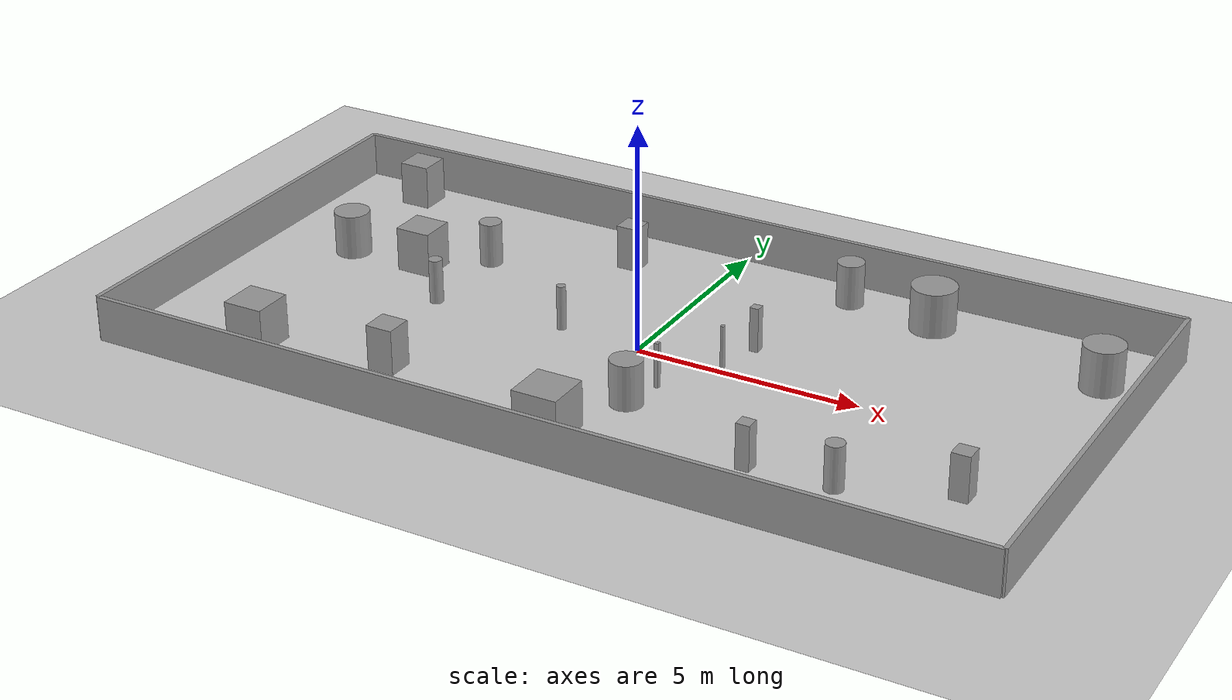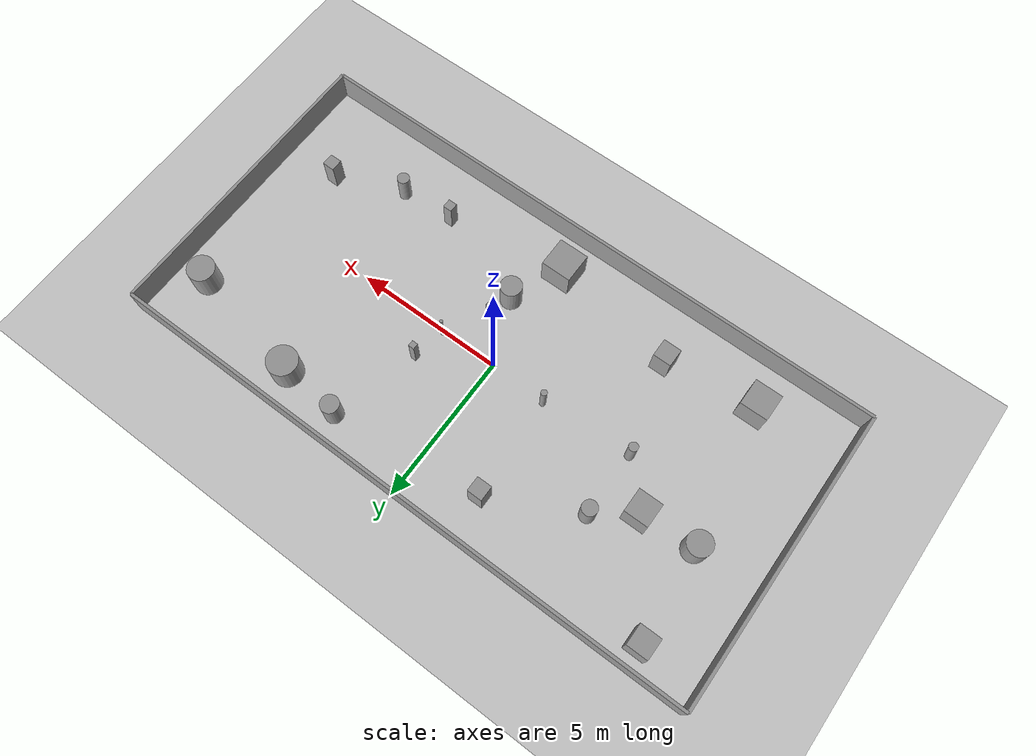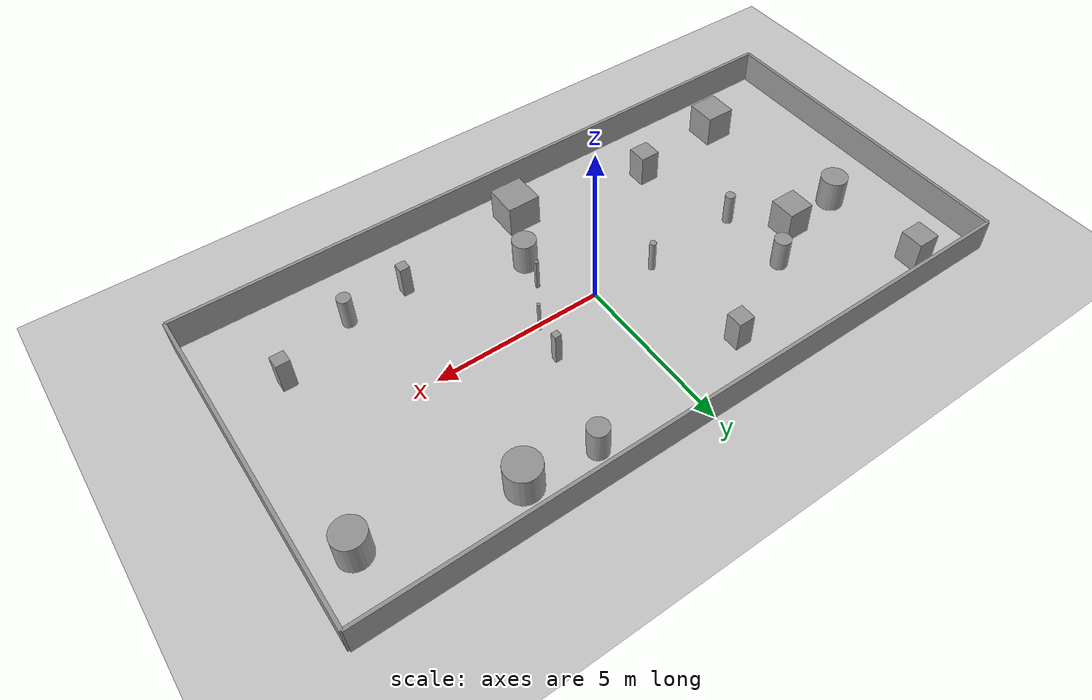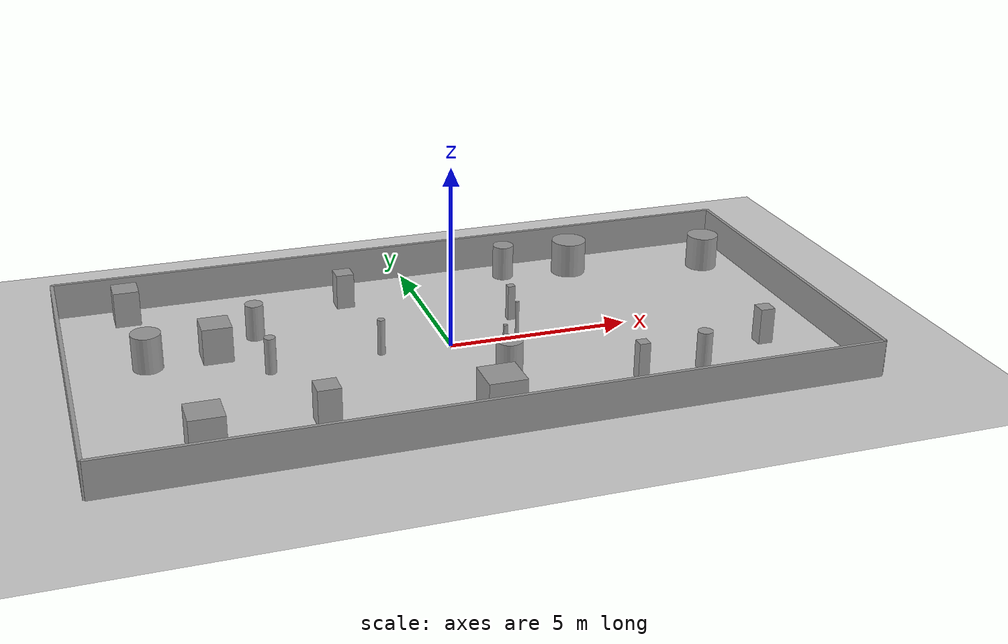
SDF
<sdf version="1.6">
 <world name="default">
  <light name="sun" type="directional">
   <pose>0 0 10 0 -0 0</pose>
   <diffuse>0.8 0.8 0.8 1</diffuse>
   <specular>0.2 0.2 0.2 1</specular>
   <attenuation>
    <range>1000</range>
    <constant>0.9</constant>
    <linear>0.01</linear>
    <quadratic>0.001</quadratic>
   </attenuation>
   <direction>-0.5 0.1 -0.9</direction>
  </light>
  <model name="ground_plane">
   <static>1</static>
   <link name="link">
    <collision name="collision">
     <laser_retro>100.5</laser_retro>
     <geometry><plane><normal>0 0 1</normal><size>100 100</size></plane></geometry>
     <surface><friction><ode><mu>100</mu><mu2>50</mu2></ode></friction></surface>
    </collision>
    <visual name="visual">
     <cast_shadows>0</cast_shadows>
     <geometry><plane><normal>0 0 1</normal><size>100 100</size></plane></geometry>
     <material>
      <script><uri>file://media/materials/scripts/gazebo.material</uri><name>Gazebo/Grey</name></script>
     </material>
    </visual>
   </link>
  </model>
  <gravity>0 0 -9.8</gravity>
  <magnetic_field>6e-06 2.3e-05 -4.2e-05</magnetic_field>
  <atmosphere type="adiabatic"/>
  <physics name="default_physics" default="0" type="ode">
   <max_step_size>0.001</max_step_size>
   <real_time_factor>1</real_time_factor>
   <real_time_update_rate>1000</real_time_update_rate>
  </physics>
  <scene><ambient>0.4 0.4 0.4 1</ambient><background>0.7 0.7 0.7 1</background><shadows>1</shadows></scene>
  <spherical_coordinates>
   <surface_model>EARTH_WGS84</surface_model>
   <latitude_deg>0</latitude_deg>
   <longitude_deg>0</longitude_deg>
   <elevation>0</elevation>
   <heading_deg>0</heading_deg>
  </spherical_coordinates>
  <model name="wall_box_0">
   <pose>-10 0 0.5 0 0 0</pose>
   <static>1</static>
   <link name="link">
    <collision name="collision">
     <laser_retro>1.5</laser_retro>
     <geometry><box><size>0.1 10 1</size></box></geometry>
    </collision>
    <visual name="visual">
     <geometry><box><size>0.1 10 1</size></box></geometry>
     <material>
      <script><name>Gazebo/Grey</name><uri>file://media/materials/scripts/gazebo.material</uri></script>
     </material>
    </visual>
   </link>
  </model>
  <model name="wall_box_1">
   <pose>10 0 0.5 0 0 0</pose>
   <static>1</static>
   <link name="link">
    <collision name="collision">
     <laser_retro>1.5</laser_retro>
     <geometry><box><size>0.1 10 1</size></box></geometry>
    </collision>
    <visual name="visual">
     <geometry><box><size>0.1 10 1</size></box></geometry>
     <material>
      <script><name>Gazebo/Grey</name><uri>file://media/materials/scripts/gazebo.material</uri></script>
     </material>
    </visual>
   </link>
  </model>
  <model name="wall_box_2">
   <pose>0 5 0.5 0 0 0</pose>
   <static>1</static>
   <link name="link">
    <collision name="collision">
     <laser_retro>1.5</laser_retro>
     <geometry><box><size>20 0.1 1</size></box></geometry>
    </collision>
    <visual name="visual">
     <geometry><box><size>20 0.1 1</size></box></geometry>
     <material>
      <script><name>Gazebo/Grey</name><uri>file://media/materials/scripts/gazebo.material</uri></script>
     </material>
    </visual>
   </link>
  </model>
  <model name="wall_box_3">
   <pose>0 -5 0.5 0 0 0</pose>
   <static>1</static>
   <link name="link">
    <collision name="collision">
     <laser_retro>1.5</laser_retro>
     <geometry><box><size>20 0.1 1</size></box></geometry>
    </collision>
    <visual name="visual">
     <geometry><box><size>20 0.1 1</size></box></geometry>
     <material>
      <script><name>Gazebo/Grey</name><uri>file://media/materials/scripts/gazebo.material</uri></script>
     </material>
    </visual>
   </link>
  </model>
  <model name="cyl_0">
   <pose>1.9 0.1 0.499998 0 0 0</pose>
   <static>1</static>
   <link name="link">
    <collision name="collision">
     <laser_retro>2.5</laser_retro>
     <geometry><cylinder><radius>0.05</radius><length>1</length></cylinder></geometry>
    </collision>
    <visual name="visual">
     <geometry><cylinder><radius>0.05</radius><length>1</length></cylinder></geometry>
     <material>
      <script><name>Gazebo/Grey</name><uri>file://media/materials/scripts/gazebo.material</uri></script>
     </material>
    </visual>
   </link>
  </model>
  <model name="cyl_1">
   <pose>-1.9 0.1 0.499998 0 0 0</pose>
   <static>1</static>
   <link name="link">
    <collision name="collision">
     <laser_retro>2.5</laser_retro>
     <geometry><cylinder><radius>0.1</radius><length>1</length></cylinder></geometry>
    </collision>
    <visual name="visual">
     <geometry><cylinder><radius>0.1</radius><length>1</length></cylinder></geometry>
     <material>
      <script><name>Gazebo/Grey</name><uri>file://media/materials/scripts/gazebo.material</uri></script>
     </material>
    </visual>
   </link>
  </model>
  <model name="cyl_2">
   <pose>-4.9 -0.1 0.499998 0 0 0</pose>
   <static>1</static>
   <link name="link">
    <collision name="collision">
     <laser_retro>2.5</laser_retro>
     <geometry><cylinder><radius>0.15</radius><length>1</length></cylinder></geometry>
    </collision>
    <visual name="visual">
     <geometry><cylinder><radius>0.15</radius><length>1</length></cylinder></geometry>
     <material>
      <script><name>Gazebo/Grey</name><uri>file://media/materials/scripts/gazebo.material</uri></script>
     </material>
    </visual>
   </link>
  </model>
  <model name="cyl_3">
   <pose>5.9 -3.1 0.499998 0 0 0</pose>
   <static>1</static>
   <link name="link">
    <collision name="collision">
     <laser_retro>2.5</laser_retro>
     <geometry><cylinder><radius>0.2</radius><length>1</length></cylinder></geometry>
    </collision>
    <visual name="visual">
     <geometry><cylinder><radius>0.2</radius><length>1</length></cylinder></geometry>
     <material>
      <script><name>Gazebo/Grey</name><uri>file://media/materials/scripts/gazebo.material</uri></script>
     </material>
    </visual>
   </link>
  </model>
  <model name="cyl_4">
   <pose>-4.9 2.1 0.499998 0 0 0</pose>
   <static>1</static>
   <link name="link">
    <collision name="collision">
     <laser_retro>2.5</laser_retro>
     <geometry><cylinder><radius>0.25</radius><length>1</length></cylinder></geometry>
    </collision>
    <visual name="visual">
     <geometry><cylinder><radius>0.25</radius><length>1</length></cylinder></geometry>
     <material>
      <script><name>Gazebo/Grey</name><uri>file://media/materials/scripts/gazebo.material</uri></script>
     </material>
    </visual>
   </link>
  </model>
  <model name="cyl_5">
   <pose>2.9 4.1 0.499998 0 0 0</pose>
   <static>1</static>
   <link name="link">
    <collision name="collision">
     <laser_retro>2.5</laser_retro>
     <geometry><cylinder><radius>0.3</radius><length>1</length></cylinder></geometry>
    </collision>
    <visual name="visual">
     <geometry><cylinder><radius>0.3</radius><length>1</length></cylinder></geometry>
     <material>
      <script><name>Gazebo/Grey</name><uri>file://media/materials/scripts/gazebo.material</uri></script>
     </material>
    </visual>
   </link>
  </model>
  <model name="cyl_6">
   <pose>0.9 -2.1 0.499998 0 0 0</pose>
   <static>1</static>
   <link name="link">
    <collision name="collision">
     <laser_retro>2.5</laser_retro>
     <geometry><cylinder><radius>0.35</radius><length>1</length></cylinder></geometry>
    </collision>
    <visual name="visual">
     <geometry><cylinder><radius>0.35</radius><length>1</length></cylinder></geometry>
     <material>
      <script><name>Gazebo/Grey</name><uri>file://media/materials/scripts/gazebo.material</uri></script>
     </material>
    </visual>
   </link>
  </model>
  <model name="cyl_7">
   <pose>-7.9 1.1 0.499998 0 0 0</pose>
   <static>1</static>
   <link name="link">
    <collision name="collision">
     <laser_retro>2.5</laser_retro>
     <geometry><cylinder><radius>0.4</radius><length>1</length></cylinder></geometry>
    </collision>
    <visual name="visual">
     <geometry><cylinder><radius>0.4</radius><length>1</length></cylinder></geometry>
     <material>
      <script><name>Gazebo/Grey</name><uri>file://media/materials/scripts/gazebo.material</uri></script>
     </material>
    </visual>
   </link>
  </model>
  <model name="cyl_8">
   <pose>8.9 3.1 0.499998 0 0 0</pose>
   <static>1</static>
   <link name="link">
    <collision name="collision">
     <laser_retro>2.5</laser_retro>
     <geometry><cylinder><radius>0.45</radius><length>1</length></cylinder></geometry>
    </collision>
    <visual name="visual">
     <geometry><cylinder><radius>0.45</radius><length>1</length></cylinder></geometry>
     <material>
      <script><name>Gazebo/Grey</name><uri>file://media/materials/scripts/gazebo.material</uri></script>
     </material>
    </visual>
   </link>
  </model>
  <model name="cyl_9">
   <pose>4.9 3.9 0.499998 0 0 0</pose>
   <static>1</static>
   <link name="link">
    <collision name="collision">
     <laser_retro>2.5</laser_retro>
     <geometry><cylinder><radius>0.5</radius><length>1</length></cylinder></geometry>
    </collision>
    <visual name="visual">
     <geometry><cylinder><radius>0.5</radius><length>1</length></cylinder></geometry>
     <material>
      <script><name>Gazebo/Grey</name><uri>file://media/materials/scripts/gazebo.material</uri></script>
     </material>
    </visual>
   </link>
  </model>
  <model name="box_0">
   <pose>1.1 -1.2 0.5 0 -0 0</pose>
   <static>1</static>
   <link name="link">
    <collision name="collision">
     <laser_retro>3.5</laser_retro>
     <geometry><box><size>0.1 0.1 1</size></box></geometry>
    </collision>
    <visual name="visual">
     <geometry><box><size>0.1 0.1 1</size></box></geometry>
     <material>
      <script><name>Gazebo/Grey</name><uri>file://media/materials/scripts/gazebo.material</uri></script>
     </material>
    </visual>
   </link>
  </model>
  <model name="box_1">
   <pose>2.1 1.2 0.5 0 -0 0</pose>
   <static>1</static>
   <link name="link">
    <collision name="collision">
     <laser_retro>3.5</laser_retro>
     <geometry><box><size>0.2 0.2 1</size></box></geometry>
    </collision>
    <visual name="visual">
     <geometry><box><size>0.2 0.2 1</size></box></geometry>
     <material>
      <script><name>Gazebo/Grey</name><uri>file://media/materials/scripts/gazebo.material</uri></script>
     </material>
    </visual>
   </link>
  </model>
  <model name="box_2">
   <pose>4.1 -3.2 0.5 0 -0 0</pose>
   <static>1</static>
   <link name="link">
    <collision name="collision">
     <laser_retro>3.5</laser_retro>
     <geometry><box><size>0.3 0.3 1</size></box></geometry>
    </collision>
    <visual name="visual">
     <geometry><box><size>0.3 0.3 1</size></box></geometry>
     <material>
      <script><name>Gazebo/Grey</name><uri>file://media/materials/scripts/gazebo.material</uri></script>
     </material>
    </visual>
   </link>
  </model>
  <model name="box_3">
   <pose>8.1 -2.2 0.5 0 -0 0</pose>
   <static>1</static>
   <link name="link">
    <collision name="collision">
     <laser_retro>3.5</laser_retro>
     <geometry><box><size>0.4 0.4 1</size></box></geometry>
    </collision>
    <visual name="visual">
     <geometry><box><size>0.4 0.4 1</size></box></geometry>
     <material>
      <script><name>Gazebo/Grey</name><uri>file://media/materials/scripts/gazebo.material</uri></script>
     </material>
    </visual>
   </link>
  </model>
  <model name="box_4">
   <pose>-2.1 3.5 0.5 0 -0 0</pose>
   <static>1</static>
   <link name="link">
    <collision name="collision">
     <laser_retro>3.5</laser_retro>
     <geometry><box><size>0.5 0.5 1</size></box></geometry>
    </collision>
    <visual name="visual">
     <geometry><box><size>0.5 0.5 1</size></box></geometry>
     <material>
      <script><name>Gazebo/Grey</name><uri>file://media/materials/scripts/gazebo.material</uri></script>
     </material>
    </visual>
   </link>
  </model>
  <model name="box_5">
   <pose>-4.1 -3.1 0.5 0 -0 0</pose>
   <static>1</static>
   <link name="link">
    <collision name="collision">
     <laser_retro>3.5</laser_retro>
     <geometry><box><size>0.6 0.6 1</size></box></geometry>
    </collision>
    <visual name="visual">
     <geometry><box><size>0.6 0.6 1</size></box></geometry>
     <material>
      <script><name>Gazebo/Grey</name><uri>file://media/materials/scripts/gazebo.material</uri></script>
     </material>
    </visual>
   </link>
  </model>
  <model name="box_6">
   <pose>-8.1 4.2 0.5 0 -0 0</pose>
   <static>1</static>
   <link name="link">
    <collision name="collision">
     <laser_retro>3.5</laser_retro>
     <geometry><box><size>0.7 0.7 1</size></box></geometry>
    </collision>
    <visual name="visual">
     <geometry><box><size>0.7 0.7 1</size></box></geometry>
     <material>
      <script><name>Gazebo/Grey</name><uri>file://media/materials/scripts/gazebo.material</uri></script>
     </material>
    </visual>
   </link>
  </model>
  <model name="box_7">
   <pose>-6.1 1.2 0.5 0 -0 0</pose>
   <static>1</static>
   <link name="link">
    <collision name="collision">
     <laser_retro>3.5</laser_retro>
     <geometry><box><size>0.8 0.8 1</size></box></geometry>
    </collision>
    <visual name="visual">
     <geometry><box><size>0.8 0.8 1</size></box></geometry>
     <material>
      <script><name>Gazebo/Grey</name><uri>file://media/materials/scripts/gazebo.material</uri></script>
     </material>
    </visual>
   </link>
  </model>
  <model name="box_8">
   <pose>-7.1 -3.5 0.5 0 -0 0</pose>
   <static>1</static>
   <link name="link">
    <collision name="collision">
     <laser_retro>3.5</laser_retro>
     <geometry><box><size>0.9 0.9 1</size></box></geometry>
    </collision>
    <visual name="visual">
     <geometry><box><size>0.9 0.9 1</size></box></geometry>
     <material>
      <script><name>Gazebo/Grey</name><uri>file://media/materials/scripts/gazebo.material</uri></script>
     </material>
    </visual>
   </link>
  </model>
  <model name="box_9">
   <pose>0.1 -3.8 0.5 0 -0 0</pose>
   <static>1</static>
   <link name="link">
    <collision name="collision">
     <laser_retro>3.5</laser_retro>
     <geometry><box><size>1 1 1</size></box></geometry>
    </collision>
    <visual name="visual">
     <geometry><box><size>1 1 1</size></box></geometry>
     <material>
      <script><name>Gazebo/Grey</name><uri>file://media/materials/scripts/gazebo.material</uri></script>
     </material>
    </visual>
   </link>
  </model>
  <plugin name="collision_map_creator" filename="libcollision_map_creator.so"/>
 </world>
</sdf>
